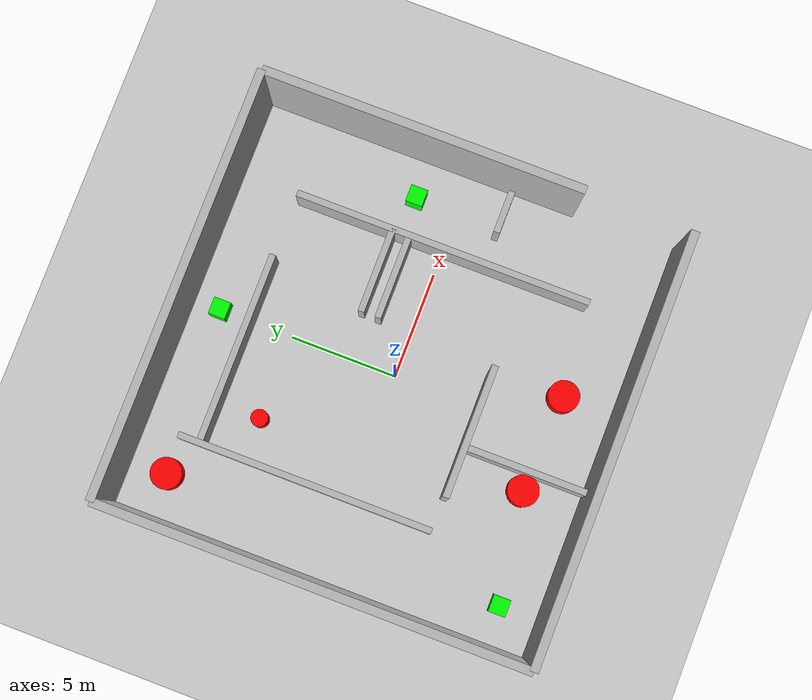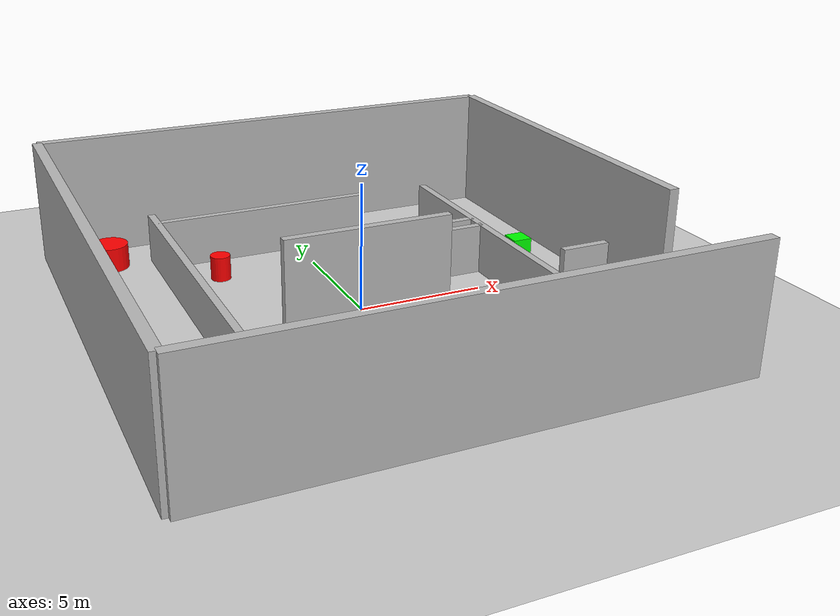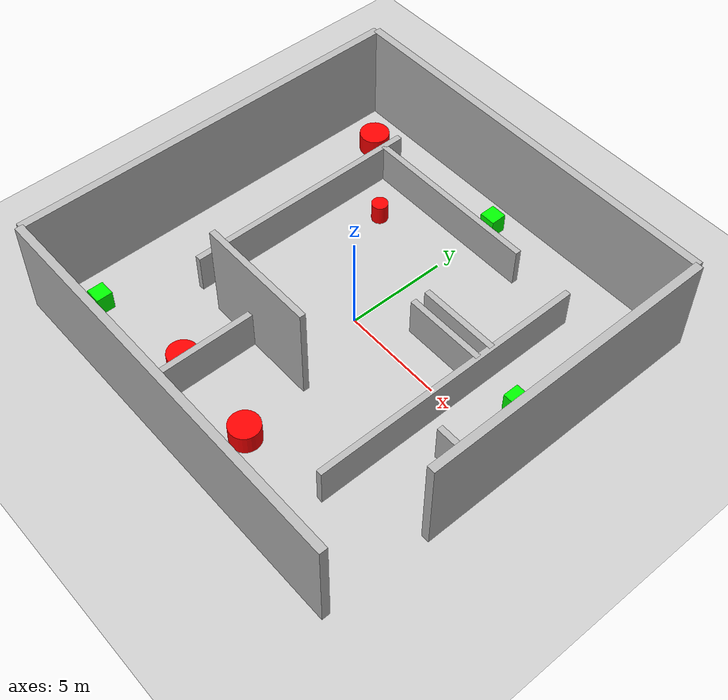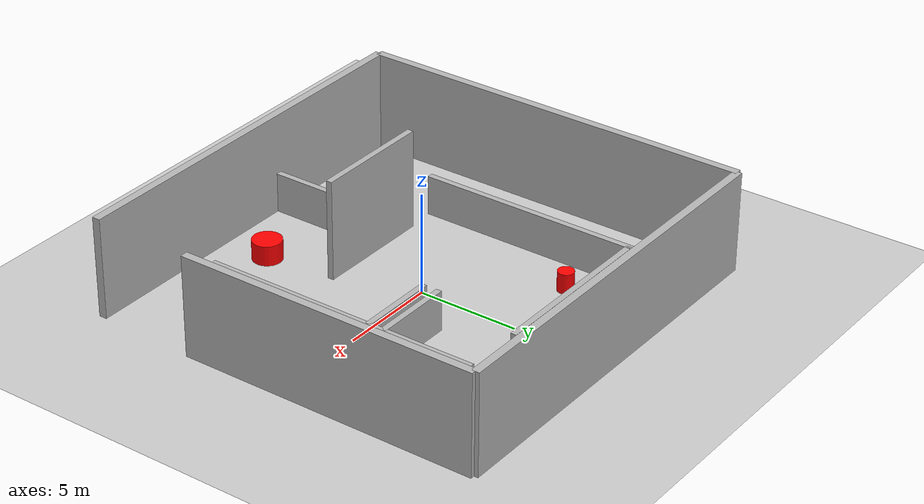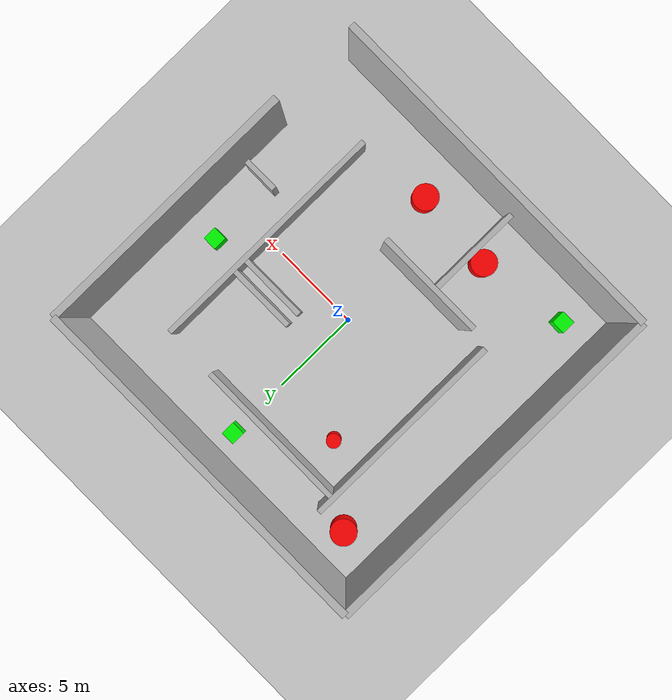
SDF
<?xml version="1.0" ?>
<sdf version="1.8">
    <world name="complex_maze_large">
        <physics name="1ms" type="ignored">
            <max_step_size>0.001</max_step_size>
            <real_time_factor>1.0</real_time_factor>
        </physics>

        <plugin name="gz::sim::systems::Physics" filename="gz-sim-physics-system"/>
        <plugin name="gz::sim::systems::UserCommands" filename="gz-sim-user-commands-system"/>
        <plugin name="gz::sim::systems::SceneBroadcaster" filename="gz-sim-scene-broadcaster-system"/>

        <plugin name="gz::sim::systems::Sensors" filename="gz-sim-sensors-system">
            <render_engine>ogre2</render_engine>
        </plugin>
        <plugin name="gz::sim::systems::Imu" filename="gz-sim-imu-system"/>

        <light type="directional" name="sun">
            <pose>0 0 20 0 0 0</pose>
            <diffuse>0.8 0.8 0.8 1</diffuse>
            <specular>0.2 0.2 1</specular>
            <direction>-0.5 0.1 -0.9</direction>
        </light>

        <model name="ground_plane">
            <static>true</static>
            <link name="link">
                <collision name="c">
                    <geometry>
                        <plane>
                            <normal>0 0 1</normal>
                        </plane>
                    </geometry>
                </collision>
                <visual name="v">
                    <geometry>
                        <plane>
                            <normal>0 0 1</normal>
                        </plane>
                    </geometry>
                    <material>
                        <ambient>0.8 0.8 0.8 1</ambient>
                        <diffuse>0.8 0.8 0.8 1</diffuse>
                    </material>
                </visual>
            </link>
        </model>

        <model name="border_N">
            <static>true</static>
            <pose>0 10 2.5 0 0 0</pose>
            <link name="l">
                <visual name="v">
                    <geometry>
                        <box>
                            <size>20 0.4 5</size>
                        </box>
                    </geometry>
                </visual>
                <collision name="c">
                    <geometry>
                        <box>
                            <size>20 0.4 5</size>
                        </box>
                    </geometry>
                </collision>
            </link>
        </model>

        <model name="border_S">
            <static>true</static>
            <pose>0 -10 2.5 0 0 0</pose>
            <link name="l">
                <visual name="v">
                    <geometry>
                        <box>
                            <size>20 0.4 5</size>
                        </box>
                    </geometry>
                </visual>
                <collision name="c">
                    <geometry>
                        <box>
                            <size>20 0.4 5</size>
                        </box>
                    </geometry>
                </collision>
            </link>
        </model>

        <model name="border_W">
            <static>true</static>
            <pose>-10 0 2.5 0 0 0</pose>
            <link name="l">
                <visual name="v">
                    <geometry>
                        <box>
                            <size>0.4 20 5</size>
                        </box>
                    </geometry>
                </visual>
                <collision name="c">
                    <geometry>
                        <box>
                            <size>0.4 20 5</size>
                        </box>
                    </geometry>
                </collision>
            </link>
        </model>

        <model name="border_E">
            <static>true</static>
            <pose>10 2.5 2.5 0 0 0</pose>
            <link name="l">
                <visual name="v">
                    <geometry>
                        <box>
                            <size>0.4 15 5</size>
                        </box>
                    </geometry>
                </visual>
                <collision name="c">
                    <geometry>
                        <box>
                            <size>0.4 15 5</size>
                        </box>
                    </geometry>
                </collision>
            </link>
        </model>

        <model name="wall_v1">
            <static>true</static>
            <pose>-6 2 1 0 0 0</pose>
            <link name="l">
                <visual name="v">
                    <geometry>
                        <box>
                            <size>0.3 12 2</size>
                        </box>
                    </geometry>
                </visual>
                <collision name="c">
                    <geometry>
                        <box>
                            <size>0.3 12 2</size>
                        </box>
                    </geometry>
                </collision>
            </link>
        </model>

        <model name="wall_v2">
            <static>true</static>
            <pose>-2 -7 1 0 0 0</pose>
            <link name="l">
                <visual name="v">
                    <geometry>
                        <box>
                            <size>0.3 6 2</size>
                        </box>
                    </geometry>
                </visual>
                <collision name="c">
                    <geometry>
                        <box>
                            <size>0.3 6 2</size>
                        </box>
                    </geometry>
                </collision>
            </link>
        </model>

        <model name="wall_v3">
            <static>true</static>
            <pose>6 0 1 0 0 0</pose>
            <link name="l">
                <visual name="v">
                    <geometry>
                        <box>
                            <size>0.3 14 2</size>
                        </box>
                    </geometry>
                </visual>
                <collision name="c">
                    <geometry>
                        <box>
                            <size>0.3 14 2</size>
                        </box>
                    </geometry>
                </collision>
            </link>
        </model>

        <model name="wall_h1">
            <static>true</static>
            <pose>-1.5 7 1 0 0 0</pose>
            <link name="l">
                <visual name="v">
                    <geometry>
                        <box>
                            <size>9 0.3 2</size>
                        </box>
                    </geometry>
                </visual>
                <collision name="c">
                    <geometry>
                        <box>
                            <size>9 0.3 2</size>
                        </box>
                    </geometry>
                </collision>
            </link>
        </model>

        <model name="wall_h2">
            <static>true</static>
            <pose>-1.5 -4 2.5 0 0 0</pose>
            <link name="l">
                <visual name="v">
                    <geometry>
                        <box>
                            <size>6 0.3 5</size>
                        </box>
                    </geometry>
                </visual>
                <collision name="c">
                    <geometry>
                        <box>
                            <size>6 0.3 5</size>
                        </box>
                    </geometry>
                </collision>
            </link>
        </model>

        <model name="wall_h3">
            <static>true</static>
            <pose>8.5 -2 1 0 0 0</pose>
            <link name="l">
                <visual name="v">
                    <geometry>
                        <box>
                            <size>2 0.3 2</size>
                        </box>
                    </geometry>
                </visual>
                <collision name="c">
                    <geometry>
                        <box>
                            <size>2 0.3 2</size>
                        </box>
                    </geometry>
                </collision>
            </link>
        </model>

        <model name="narrow_path_N">
            <static>true</static>
            <pose>4 2.4 1 0 0 0</pose>
            <link name="l">
                <visual name="v">
                    <geometry>
                        <box>
                            <size>4 0.3 2</size>
                        </box>
                    </geometry>
                </visual>
                <collision name="c">
                    <geometry>
                        <box>
                            <size>4 0.3 2</size>
                        </box>
                    </geometry>
                </collision>
            </link>
        </model>

        <model name="narrow_path_S">
            <static>true</static>
            <pose>4 1.6 1 0 0 0</pose>
            <link name="l">
                <visual name="v">
                    <geometry>
                        <box>
                            <size>4 0.3 2</size>
                        </box>
                    </geometry>
                </visual>
                <collision name="c">
                    <geometry>
                        <box>
                            <size>4 0.3 2</size>
                        </box>
                    </geometry>
                </collision>
            </link>
        </model>

        <model name="green_survivor_1">
            <static>true</static>
            <pose>-8 -8 0.5 0 0 0</pose>
            <link name="link">
                <visual name="v">
                    <geometry>
                        <box>
                            <size>0.8 0.8 1.0</size>
                        </box>
                    </geometry>
                    <material>
                        <ambient>0 1 0 1</ambient>
                        <diffuse>0 1 0 1</diffuse>
                    </material>
                </visual>
                <collision name="c">
                    <geometry>
                        <box>
                            <size>0.8 0.8 1.0</size>
                        </box>
                    </geometry>
                </collision>
            </link>
        </model>

        <model name="green_survivor_2">
            <static>true</static>
            <pose>0 8.5 0.5 0 0 0</pose>
            <link name="link">
                <visual name="v">
                    <geometry>
                        <box>
                            <size>0.8 0.8 1.0</size>
                        </box>
                    </geometry>
                    <material>
                        <ambient>0 1 0 1</ambient>
                        <diffuse>0 1 0 1</diffuse>
                    </material>
                </visual>
                <collision name="c">
                    <geometry>
                        <box>
                            <size>0.8 0.8 1.0</size>
                        </box>
                    </geometry>
                </collision>
            </link>
        </model>

        <model name="green_survivor_3">
            <static>true</static>
            <pose>8 2 0.5 0 0 0</pose>
            <link name="link">
                <visual name="v">
                    <geometry>
                        <box>
                            <size>0.8 0.8 1.0</size>
                        </box>
                    </geometry>
                    <material>
                        <ambient>0 1 0 1</ambient>
                        <diffuse>0 1 0 1</diffuse>
                    </material>
                </visual>
                <collision name="c">
                    <geometry>
                        <box>
                            <size>0.8 0.8 1.0</size>
                        </box>
                    </geometry>
                </collision>
            </link>
        </model>

        <model name="red_danger1">
            <static>true</static>
            <pose>-4 5 0.5 0 0 0</pose>
            <link name="link">
                <visual name="v">
                    <geometry>
                        <cylinder>
                            <radius>0.4</radius>
                            <length>1.0</length>
                        </cylinder>
                    </geometry>
                    <material>
                        <ambient>1 0 0 1</ambient>
                        <diffuse>1 0 0 1</diffuse>
                    </material>
                </visual>
                <collision name="c">
                    <geometry>
                        <cylinder>
                            <radius>0.4</radius>
                            <length>1.0</length>
                        </cylinder>
                    </geometry>
                </collision>
            </link>
        </model>

        <model name="red_danger2">
            <static>true</static>
            <pose>-7.8 8 0.5 0 0 0</pose>
            <link name="link">
                <visual name="v">
                    <geometry>
                        <cylinder>
                            <radius>0.73</radius>
                            <length>1.0</length>
                        </cylinder>
                    </geometry>
                    <material>
                        <ambient>1 0 0 1</ambient>
                        <diffuse>1 0 0 1</diffuse>
                    </material>
                </visual>
                <collision name="c">
                    <geometry>
                        <cylinder>
                            <radius>0.73</radius>
                            <length>1.0</length>
                        </cylinder>
                    </geometry>
                </collision>
            </link>
        </model>

        <model name="red_danger3">
            <static>true</static>
            <pose>1.77 -7.44 0.5 0 0 0</pose>
            <link name="link">
                <visual name="v">
                    <geometry>
                        <cylinder>
                            <radius>0.73</radius>
                            <length>1.0</length>
                        </cylinder>
                    </geometry>
                    <material>
                        <ambient>1 0 0 1</ambient>
                        <diffuse>1 0 0 1</diffuse>
                    </material>
                </visual>
                <collision name="c">
                    <geometry>
                        <cylinder>
                            <radius>0.73</radius>
                            <length>1.0</length>
                        </cylinder>
                    </geometry>
                </collision>
            </link>
        </model>

        <model name="red_danger4">
            <static>true</static>
            <pose>-2.85 -7.21 0.5 0 0 0</pose>
            <link name="link">
                <visual name="v">
                    <geometry>
                        <cylinder>
                            <radius>0.73</radius>
                            <length>1.0</length>
                        </cylinder>
                    </geometry>
                    <material>
                        <ambient>1 0 0 1</ambient>
                        <diffuse>1 0 0 1</diffuse>
                    </material>
                </visual>
                <collision name="c">
                    <geometry>
                        <cylinder>
                            <radius>0.73</radius>
                            <length>1.0</length>
                        </cylinder>
                    </geometry>
                </collision>
            </link>
        </model>
    </world>
</sdf>
